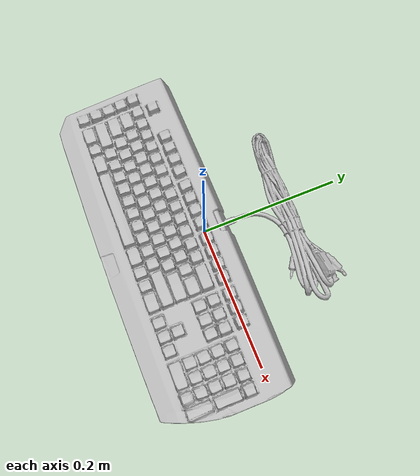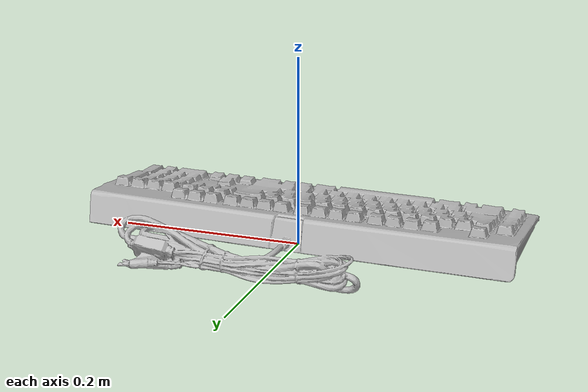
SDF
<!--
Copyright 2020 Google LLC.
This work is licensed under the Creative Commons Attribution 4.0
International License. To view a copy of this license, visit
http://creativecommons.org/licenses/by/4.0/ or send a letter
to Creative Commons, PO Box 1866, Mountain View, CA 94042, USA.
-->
<?xml version="1.0" ?>
<sdf version="1.6">
  <model name="Razer_BlackWidow_Ultimate_2014_Mechanical_Gaming_Keyboard">
    <link name="link_0">
      <visual name="visual">
        <geometry>
          <mesh>
            <uri>meshes/model.obj</uri>
          </mesh>
        </geometry>
      </visual>
      <collision name="collision_0">
        <geometry>
          <mesh>
            <uri>meshes/model.obj</uri>
          </mesh>
        </geometry>
      </collision>
    </link>
  </model>
</sdf>
